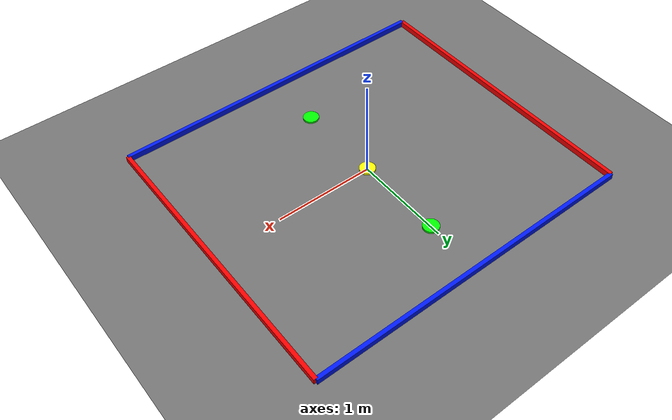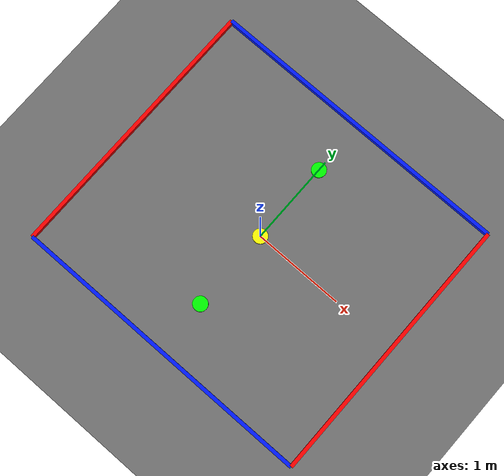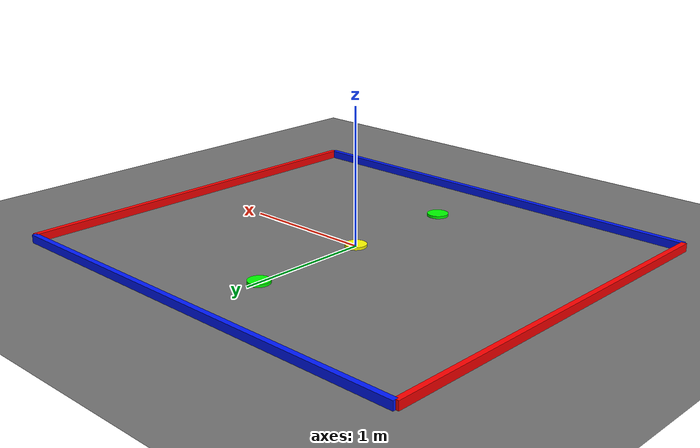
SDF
<?xml version="1.0" ?>
<sdf version="1.9">
  <world name="formation_test">
    <physics name="1ms" type="ignored">
      <max_step_size>0.001</max_step_size>
      <real_time_factor>1.0</real_time_factor>
    </physics>

    <plugin filename="gz-sim-physics-system" name="gz::sim::systems::Physics"/>
    <plugin filename="gz-sim-user-commands-system" name="gz::sim::systems::UserCommands"/>
    <plugin filename="gz-sim-scene-broadcaster-system" name="gz::sim::systems::SceneBroadcaster"/>
    <plugin filename="gz-sim-sensors-system" name="gz::sim::systems::Sensors">
      <render_engine>ogre2</render_engine>
    </plugin>
    <plugin filename="gz-sim-imu-system" name="gz::sim::systems::Imu"/>
    <plugin filename="gz-sim-air-pressure-system" name="gz::sim::systems::AirPressure"/>

    <scene>
      <ambient>0.6 0.6 0.6 1</ambient>
      <background>0.8 0.8 0.8 1</background>
      <shadows>true</shadows>
    </scene>

    <light type="directional" name="sun">
      <cast_shadows>true</cast_shadows>
      <pose>0 0 10 0 0 0</pose>
      <diffuse>0.8 0.8 0.8 1</diffuse>
      <specular>0.2 0.2 0.2 1</specular>
      <direction>-0.5 0.1 -0.9</direction>
    </light>

    <model name="ground_plane">
      <static>true</static>
      <link name="link">
        <collision name="collision">
          <geometry>
            <plane>
              <normal>0 0 1</normal>
              <size>20 20</size>
            </plane>
          </geometry>
        </collision>
        <visual name="visual">
          <geometry>
            <plane>
              <normal>0 0 1</normal>
              <size>20 20</size>
            </plane>
          </geometry>
          <material>
            <ambient>0.35 0.35 0.35 1</ambient>
            <diffuse>0.45 0.45 0.45 1</diffuse>
          </material>
        </visual>
      </link>
    </model>

    <!-- Visual rectangular fence matching mission.yaml:
         x/east: -1.7 ~ 1.7, y/north: -1.5 ~ 1.5. -->
    <model name="fence_x_min_red">
      <static>true</static>
      <pose>-1.7 0 0.03 0 0 0</pose>
      <link name="link">
        <visual name="visual">
          <geometry><box><size>0.04 3.0 0.06</size></box></geometry>
          <material><ambient>1 0 0 1</ambient><diffuse>1 0 0 1</diffuse></material>
        </visual>
      </link>
    </model>

    <model name="fence_x_max_red">
      <static>true</static>
      <pose>1.7 0 0.03 0 0 0</pose>
      <link name="link">
        <visual name="visual">
          <geometry><box><size>0.04 3.0 0.06</size></box></geometry>
          <material><ambient>1 0 0 1</ambient><diffuse>1 0 0 1</diffuse></material>
        </visual>
      </link>
    </model>

    <model name="fence_y_min_blue">
      <static>true</static>
      <pose>0 -1.5 0.03 0 0 0</pose>
      <link name="link">
        <visual name="visual">
          <geometry><box><size>3.4 0.04 0.06</size></box></geometry>
          <material><ambient>0 0.1 1 1</ambient><diffuse>0 0.1 1 1</diffuse></material>
        </visual>
      </link>
    </model>

    <model name="fence_y_max_blue">
      <static>true</static>
      <pose>0 1.5 0.03 0 0 0</pose>
      <link name="link">
        <visual name="visual">
          <geometry><box><size>3.4 0.04 0.06</size></box></geometry>
          <material><ambient>0 0.1 1 1</ambient><diffuse>0 0.1 1 1</diffuse></material>
        </visual>
      </link>
    </model>

    <!-- Spawn reference markers. Yellow=center leader, green=followers. -->
    <model name="spawn_marker_mav1">
      <static>true</static>
      <pose>0 0 0.011 0 0 0</pose>
      <link name="link"><visual name="visual"><geometry><cylinder><radius>0.08</radius><length>0.02</length></cylinder></geometry><material><ambient>1 1 0 1</ambient><diffuse>1 1 0 1</diffuse></material></visual></link>
    </model>
    <model name="spawn_marker_mav2">
      <static>true</static>
      <pose>0 -0.9 0.011 0 0 0</pose>
      <link name="link"><visual name="visual"><geometry><cylinder><radius>0.08</radius><length>0.02</length></cylinder></geometry><material><ambient>0 1 0 1</ambient><diffuse>0 1 0 1</diffuse></material></visual></link>
    </model>
    <model name="spawn_marker_mav3">
      <static>true</static>
      <pose>0 0.9 0.011 0 0 0</pose>
      <link name="link"><visual name="visual"><geometry><cylinder><radius>0.08</radius><length>0.02</length></cylinder></geometry><material><ambient>0 1 0 1</ambient><diffuse>0 1 0 1</diffuse></material></visual></link>
    </model>
  </world>
</sdf>
